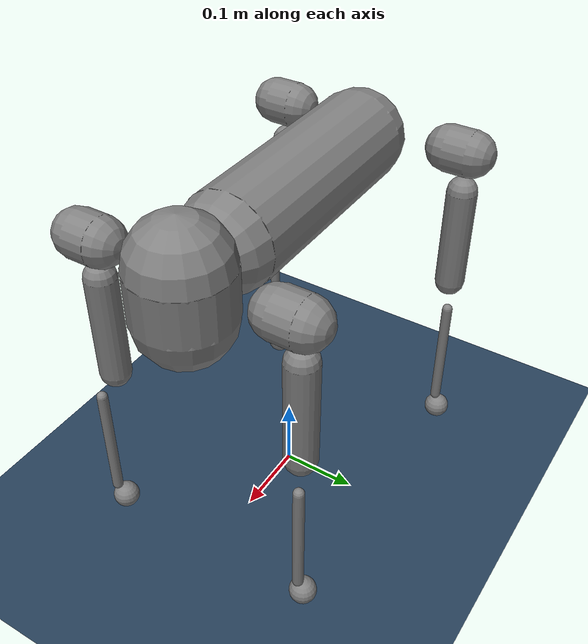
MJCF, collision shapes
<mujoco model="flat terrain">
  <include file="go2.xml"/>
  <statistic center="0 0 0.1" extent="0.8"/>

  <visual>
    <headlight diffuse="0.6 0.6 0.6" ambient="0.3 0.3 0.3" specular="0 0 0"/>
    <rgba haze="0.15 0.25 0.35 1"/>
    <global azimuth="-130" elevation="-20"/>
    <quality shadowsize="4096" offsamples="8"/>
    <map force="0.1" zfar="30"/>  <!-- Hide force vectors -->
  </visual>

  <asset>
    <texture type="2d" name="groundplane" builtin="checker" mark="edge" rgb1="0.2 0.3 0.4" rgb2="0.1 0.2 0.3"
      markrgb="0.8 0.8 0.8" width="300" height="300"/>
    <material name="groundplane" texture="groundplane" texuniform="true" texrepeat="5 5" reflectance="0.2"/>
  </asset>

  <worldbody>
    <light pos="0 0 1.5" dir="0 0 -1" directional="true"/>
    <geom name="floor" size="0 0 0.05" type="plane" material="groundplane" friction="0.8 0.02 0.01"/>
  </worldbody>
</mujoco>

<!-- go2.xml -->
<mujoco model="go2">
  <compiler angle="radian" meshdir="assets" autolimits="true" />

  <option timestep="0.02" iterations="1" ls_iterations="5">
    <flag eulerdamp="disable" />
  </option>
  <custom>
    <numeric data="15" name="max_contact_points" />
    <numeric data="15" name="max_geom_pairs" />
  </custom>

  <default>
    <geom condim="1" margin="0.001" friction="0.6"/> <!-- solimp="0.0 0.95 0.01" -->
    <default class="go2">
      <site rgba="1 0 0 1" size="0.01" group="5" />
      <!-- general control-->
      <!-- torque control-->
      <joint axis="0 1 0" damping="0.65" armature="0.01" />

      <!-- ideal -->
      <default class="abduction">
        <joint axis="1 0 0" range="-1.0472 1.0472"/>
      </default>
      <default class="hip">
        <joint axis="0 1 0"/>
        <default class="front_hip">
          <joint range="-1.5708 3.4907"/>
        </default>
        <default class="back_hip">
          <joint range="-0.5236 4.5379"/>
        </default>
      </default>
      <default class="knee">
        <joint axis="0 1 0" range="-2.7227 -0.83776"/>
      </default>
      <default class="visual">
        <geom type="mesh" contype="0" conaffinity="0" group="2" material="metal"/>
      </default>
      <default class="collision">
        <geom group="3" type="capsule" margin="0.001"/>
        <!--  friction="0.4" -->
        <default class="foot">
          <geom type="sphere" size="0.0175" priority="1" condim="6" friction="0.8 0.02 0.01"/> <!-- friction "0.6" solimp="0.015 1 0.031" -->
        </default>
      </default>
    </default>
  </default>

  <asset>
    <material name="black" rgba="0.2 0.2 0.2 1" />
    <material name="metal" rgba="0.7 0.7 0.7 1" />
    <material name="white" rgba="1 1 1 1" />
    <material name="gray" rgba="0.671705 0.692426 0.774270 1" />

    <mesh file="assets/base_0.obj" />
    <mesh file="assets/base_1.obj" />
    <mesh file="assets/base_2.obj" />
    <mesh file="assets/base_3.obj" />
    <mesh file="assets/base_4.obj" />
    <mesh file="assets/hip_0.obj" />
    <mesh file="assets/hip_1.obj" />
    <mesh file="assets/thigh_0.obj" />
    <mesh file="assets/thigh_1.obj" />
    <mesh file="assets/thigh_mirror_0.obj" />
    <mesh file="assets/thigh_mirror_1.obj" />
    <mesh file="assets/calf_0.obj" />
    <mesh file="assets/calf_1.obj" />
    <mesh file="assets/calf_mirror_0.obj" />
    <mesh file="assets/calf_mirror_1.obj" />
    <mesh file="assets/foot.obj" />
  </asset>

  <worldbody>
    <light pos="1 0 3.5" dir="0 0 -1" directional="true" />
    <body name="base" pos="0 0 0.445" childclass="go2">
      <inertial pos="0.021112 0 -0.005366" quat="-0.000543471 0.713435 -0.00173769 0.700719"
        mass="6.921"
        diaginertia="0.107027 0.0980771 0.0244531" />
      <freejoint name="floating_base_joint" />
      <geom mesh="base_0" material="black" class="visual" />
      <geom mesh="base_1" material="black" class="visual" />
      <geom mesh="base_2" material="black" class="visual" />
      <geom mesh="base_3" material="white" class="visual" />
      <geom mesh="base_4" material="gray" class="visual" />
      <geom size="0.06 0.14" pos="-0.02 0 0" class="collision" quat="0.707107 0 0.707107 0" />
      <geom size="0.06 0.03" pos="0.2 0 -0.015" class="collision" />
      <site name="imu" pos="-0.02557 0 0.04232" />
      <site name="base" pos="0 0 0" />
      <body name="FL_hip" pos="0.1934 0.0465 0">
        <inertial pos="-0.0054 0.00194 -0.000105" quat="0.497014 0.499245 0.505462 0.498237"
          mass="0.678"
          diaginertia="0.00088403 0.000596003 0.000479967" />
        <joint name="FL_hip_joint" class="abduction"/>
        <geom mesh="hip_0" material="metal" class="visual" />
        <geom mesh="hip_1" material="gray" class="visual" />
        <geom size="0.03 0.015" pos="0 0.08 0" quat="0.707107 0.707107 0 0" class="collision" />
        <site name="FL_hip_site" pos = "0 0 0" size="0.01" type="sphere" rgba="1 0 0 1"/>
        <body name="FL_thigh" pos="0 0.0955 0">
          <inertial pos="-0.00374 -0.0223 -0.0327" quat="0.829533 0.0847635 -0.0200632 0.551623"
            mass="1.152"
            diaginertia="0.00594973 0.00584149 0.000878787" />
          <joint name="FL_thigh_joint" class="front_hip" />
          <geom mesh="thigh_0" material="metal" class="visual" />
          <geom mesh="thigh_1" material="gray" class="visual" />
          <geom size="0.02 0.07" pos="-0.01 -0.01 -0.13" class="collision" />
          <body name="FL_calf" pos="0 0 -0.213">
            <inertial pos="0.00629595 -0.000622121 -0.141417"
              quat="0.710672 0.00154099 -0.00450087 0.703508"
              mass="0.241352" diaginertia="0.0014901 0.00146356 5.31397e-05" />
            <joint name="FL_calf_joint" class="knee" />
            <geom mesh="calf_0" material="gray" class="visual" />
            <geom mesh="calf_1" material="black" class="visual" />
            <geom size="0.007 0.08" pos="0.01 0 -0.1" quat="1 0 0 0"
              class="collision" />
            <geom pos="0 0 -0.213" mesh="foot" class="visual" material="black" />
            <body name="FL_foot" pos="0 0 -0.213">
              <inertial diaginertia="1e-14 1e-14 1e-14" mass="1e-6" pos="0 0 0"/>
              <body name="dummy_FL_foot_collision" pos="0 0 0">
                <geom class="foot" pos="-0.002 0 0" name="dummy_FL_foot_collision" />
                <inertial diaginertia="1e-14 1e-14 1e-14" mass="1e-6" pos="0 0 0"/>
                <site name="FL_grf_sensor" pos="0 0 0" size="0.025" type="sphere"/>
              </body>
            </body>
          </body>
        </body>
      </body>
      <body name="FR_hip" pos="0.1934 -0.0465 0">
        <inertial pos="-0.0054 -0.00194 -0.000105" quat="0.498237 0.505462 0.499245 0.497014"
          mass="0.678"
          diaginertia="0.00088403 0.000596003 0.000479967" />
        <joint name="FR_hip_joint" class="abduction"/>
        <geom mesh="hip_0" material="metal" class="visual" quat="4.63268e-05 1 0 0" />
        <geom mesh="hip_1" material="gray" class="visual" quat="4.63268e-05 1 0 0" />
        <geom size="0.03 0.015" pos="0 -0.08 0" quat="0.707107 0.707107 0 0" class="collision" />
        <site name="FR_hip_site" pos = "0 0 0" size="0.01" type="sphere" rgba="1 0 0 1"/>
        <body name="FR_thigh" pos="0 -0.0955 0">
          <inertial pos="-0.00374 0.0223 -0.0327" quat="0.551623 -0.0200632 0.0847635 0.829533"
            mass="1.152"
            diaginertia="0.00594973 0.00584149 0.000878787" />
          <joint name="FR_thigh_joint" class="front_hip"/>
          <geom mesh="thigh_mirror_0" material="metal" class="visual" />
          <geom mesh="thigh_mirror_1" material="gray" class="visual" />
          <geom size="0.02 0.07" pos="-0.01 0.01 -0.13" class="collision" />
          <body name="FR_calf" pos="0 0 -0.213">
            <inertial pos="0.00629595 0.000622121 -0.141417"
              quat="0.703508 -0.00450087 0.00154099 0.710672"
              mass="0.241352" diaginertia="0.0014901 0.00146356 5.31397e-05" />
            <joint name="FR_calf_joint" class="knee"/>
            <geom mesh="calf_mirror_0" material="gray" class="visual" />
            <geom mesh="calf_mirror_1" material="black" class="visual" />
            <geom size="0.007 0.08" pos="0.01 0 -0.1" quat="1 0 0 0"
              class="collision" />
            <geom pos="0 0 -0.213" mesh="foot" class="visual" material="black" />
            <body name="FR_foot" pos="0 0 -0.213">
              <body name="dummy_FR_foot_collision" pos="0 0 0">
                <geom class="foot" pos="-0.002 0 0" name="dummy_FR_foot_collision" />
                <inertial diaginertia="1e-14 1e-14 1e-14" mass="1e-6" pos="0 0 0"/>
                <site name="FR_grf_sensor" pos="0 0 0" size="0.025" type="sphere"/>
              </body>
            </body>
          </body>
        </body>
      </body>
      <body name="RL_hip" pos="-0.1934 0.0465 0">
        <inertial pos="0.0054 0.00194 -0.000105" quat="0.505462 0.498237 0.497014 0.499245"
          mass="0.678"
          diaginertia="0.00088403 0.000596003 0.000479967" />
        <joint name="RL_hip_joint" class="abduction"/>
        <geom mesh="hip_0" material="metal" class="visual" quat="4.63268e-05 0 1 0" />
        <geom mesh="hip_1" material="gray" class="visual" quat="4.63268e-05 0 1 0" />
        <geom size="0.03 0.015" pos="0 0.08 0" quat="0.707107 0.707107 0 0" class="collision" />
        <site name="RL_hip_site" pos = "0 0 0" size="0.01" type="sphere" rgba="1 0 0 1"/>
        <body name="RL_thigh" pos="0 0.0955 0">
          <inertial pos="-0.00374 -0.0223 -0.0327" quat="0.829533 0.0847635 -0.0200632 0.551623"
            mass="1.152"
            diaginertia="0.00594973 0.00584149 0.000878787" />
          <joint name="RL_thigh_joint" class="back_hip"/>
          <geom mesh="thigh_0" material="metal" class="visual" />
          <geom mesh="thigh_1" material="gray" class="visual" />
          <geom size="0.02 0.07" pos="-0.01 -0.01 -0.13"
            class="collision" />
          <body name="RL_calf" pos="0 0 -0.213">
            <inertial pos="0.00629595 -0.000622121 -0.141417"
              quat="0.710672 0.00154099 -0.00450087 0.703508"
              mass="0.241352" diaginertia="0.0014901 0.00146356 5.31397e-05" />
            <joint name="RL_calf_joint" class="knee" />
            <geom mesh="calf_0" material="gray" class="visual" />
            <geom mesh="calf_1" material="black" class="visual" />
            <geom size="0.007 0.08" pos="0.01 0 -0.1" quat="1 0 0 0"
              class="collision" />
            <geom pos="0 0 -0.213" mesh="foot" class="visual" material="black" />
            <body name="RL_foot" pos="0 0 -0.213">
              <inertial diaginertia="1e-14 1e-14 1e-14" mass="1e-6" pos="0 0 0"/>
              <body name="dummy_RL_foot_collision" pos="0 0 0">
                <geom class="foot" pos="-0.002 0 0" name="dummy_RL_foot_collision" />
                <inertial diaginertia="1e-14 1e-14 1e-14" mass="1e-6" pos="0 0 0"/>
                <site name="RL_grf_sensor" pos="0 0 0" size="0.025" type="sphere"/>
              </body>
            </body>
          </body>
        </body>
      </body>
      <body name="RR_hip" pos="-0.1934 -0.0465 0">
        <inertial pos="0.0054 -0.00194 -0.000105" quat="0.499245 0.497014 0.498237 0.505462"
          mass="0.678"
          diaginertia="0.00088403 0.000596003 0.000479967" />
        <joint name="RR_hip_joint" class="abduction"/>
        <geom mesh="hip_0" material="metal" class="visual"
          quat="2.14617e-09 4.63268e-05 4.63268e-05 -1" />
        <geom mesh="hip_1" material="gray" class="visual"
          quat="2.14617e-09 4.63268e-05 4.63268e-05 -1" />
        <geom size="0.03 0.015" pos="0 -0.08 0" quat="0.707107 0.707107 0 0" class="collision" />
        <site name="RR_hip_site" pos = "0 0 0" size="0.01" type="sphere" rgba="1 0 0 1"/>
        <body name="RR_thigh" pos="0 -0.0955 0">
          <inertial pos="-0.00374 0.0223 -0.0327" quat="0.551623 -0.0200632 0.0847635 0.829533"
            mass="1.152"
            diaginertia="0.00594973 0.00584149 0.000878787" />
          <joint name="RR_thigh_joint" class="back_hip"/>
          <geom mesh="thigh_mirror_0" material="metal" class="visual" />
          <geom mesh="thigh_mirror_1" material="gray" class="visual" />
          <geom size="0.02 0.07" pos="-0.01 0.01 -0.13"
            class="collision" />
          <body name="RR_calf" pos="0 0 -0.213">
            <inertial pos="0.00629595 0.000622121 -0.141417"
              quat="0.703508 -0.00450087 0.00154099 0.710672"
              mass="0.241352" diaginertia="0.0014901 0.00146356 5.31397e-05" />
            <joint name="RR_calf_joint" class="knee"/>
            <geom mesh="calf_mirror_0" material="gray" class="visual" />
            <geom mesh="calf_mirror_1" material="black" class="visual" />
            <geom size="0.007 0.08" pos="0.01 0 -0.1" quat="1 0 0 0"
              class="collision" />
            <geom pos="0 0 -0.213" mesh="foot" class="visual" material="black" />
            <body name="RR_foot" pos="0 0 -0.213">
              <inertial diaginertia="1e-14 1e-14 1e-14" mass="1e-6" pos="0 0 0"/>
              <body name="dummy_RR_foot_collision" pos="0 0 0">
                <geom class="foot" pos="-0.002 0 0" name="dummy_RR_foot_collision" />
                <inertial diaginertia="1e-14 1e-14 1e-14" mass="1e-6" pos="0 0 0"/>
                <site name="RR_grf_sensor" pos="0 0 0" size="0.025" type="sphere"/>
              </body>
            </body>
          </body>
        </body>
      </body>
    </body>

    <camera mode="trackcom" name="trackcom_RightHoriz" pos="0 -0.8 0.3" xyaxes="1 0 0 0 0 1"/>
    <camera mode="trackcom" name="tackcom_RightAbove10deg" pos="0 -0.9 0.5" xyaxes="1 0 0 0 0.174 0.985"/>
  </worldbody>

  <actuator>
    <motor class="abduction" name="FL_hip" joint="FL_hip_joint"/>
    <motor class="hip" name="FL_thigh" joint="FL_thigh_joint"/>
    <motor class="knee" name="FL_calf" joint="FL_calf_joint"/>
    <motor class="abduction" name="FR_hip" joint="FR_hip_joint"/>
    <motor class="hip" name="FR_thigh" joint="FR_thigh_joint"/>
    <motor class="knee" name="FR_calf" joint="FR_calf_joint"/>
    <motor class="abduction" name="RL_hip" joint="RL_hip_joint"/>
    <motor class="hip" name="RL_thigh" joint="RL_thigh_joint"/>
    <motor class="knee" name="RL_calf" joint="RL_calf_joint"/>
    <motor class="abduction" name="RR_hip" joint="RR_hip_joint"/>
    <motor class="hip" name="RR_thigh" joint="RR_thigh_joint"/>
    <motor class="knee" name="RR_calf" joint="RR_calf_joint"/>
  </actuator>

  <sensor>
    <!--keep the order of the sensors for reading
      FR -> FL -> RR -> RL-->
    <jointpos name="FR_hip_pos" joint="FR_hip_joint" />
    <jointpos name="FR_thigh_pos" joint="FR_thigh_joint" />
    <jointpos name="FR_calf_pos" joint="FR_calf_joint" />
    <jointpos name="FL_hip_pos" joint="FL_hip_joint" />
    <jointpos name="FL_thigh_pos" joint="FL_thigh_joint" />
    <jointpos name="FL_calf_pos" joint="FL_calf_joint" />
    <jointpos name="RR_hip_pos" joint="RR_hip_joint" />
    <jointpos name="RR_thigh_pos" joint="RR_thigh_joint" />
    <jointpos name="RR_calf_pos" joint="RR_calf_joint" />
    <jointpos name="RL_hip_pos" joint="RL_hip_joint" />
    <jointpos name="RL_thigh_pos" joint="RL_thigh_joint" />
    <jointpos name="RL_calf_pos" joint="RL_calf_joint" />

    <jointvel name="FR_hip_vel" joint="FR_hip_joint" />
    <jointvel name="FR_thigh_vel" joint="FR_thigh_joint" />
    <jointvel name="FR_calf_vel" joint="FR_calf_joint" />
    <jointvel name="FL_hip_vel" joint="FL_hip_joint" />
    <jointvel name="FL_thigh_vel" joint="FL_thigh_joint" />
    <jointvel name="FL_calf_vel" joint="FL_calf_joint" />
    <jointvel name="RR_hip_vel" joint="RR_hip_joint" />
    <jointvel name="RR_thigh_vel" joint="RR_thigh_joint" />
    <jointvel name="RR_calf_vel" joint="RR_calf_joint" />
    <jointvel name="RL_hip_vel" joint="RL_hip_joint" />
    <jointvel name="RL_thigh_vel" joint="RL_thigh_joint" />
    <jointvel name="RL_calf_vel" joint="RL_calf_joint" />

    <jointactuatorfrc name="FR_hip_torque" joint="FR_hip_joint" noise="0.01" />
    <jointactuatorfrc name="FR_thigh_torque" joint="FR_thigh_joint" noise="0.01" />
    <jointactuatorfrc name="FR_calf_torque" joint="FR_calf_joint" noise="0.01" />
    <jointactuatorfrc name="FL_hip_torque" joint="FL_hip_joint" noise="0.01" />
    <jointactuatorfrc name="FL_thigh_torque" joint="FL_thigh_joint" noise="0.01" />
    <jointactuatorfrc name="FL_calf_torque" joint="FL_calf_joint" noise="0.01" />
    <jointactuatorfrc name="RR_hip_torque" joint="RR_hip_joint" noise="0.01" />
    <jointactuatorfrc name="RR_thigh_torque" joint="RR_thigh_joint" noise="0.01" />
    <jointactuatorfrc name="RR_calf_torque" joint="RR_calf_joint" noise="0.01" />
    <jointactuatorfrc name="RL_hip_torque" joint="RL_hip_joint" noise="0.01" />
    <jointactuatorfrc name="RL_thigh_torque" joint="RL_thigh_joint" noise="0.01" />
    <jointactuatorfrc name="RL_calf_torque" joint="RL_calf_joint" noise="0.01" />

    <framequat name="imu_quat" objtype="site" objname="imu" />
    <gyro name="imu_gyro" site="imu" />
    <accelerometer name="imu_acc" site="imu" />
    <!--keep the relative order between these four sensors-->
    <touch name="FR_contact_sensor" site="FR_grf_sensor"/>
    <touch name="FL_contact_sensor" site="FL_grf_sensor"/>
    <touch name="RR_contact_sensor" site="RR_grf_sensor"/>
    <touch name="RL_contact_sensor" site="RL_grf_sensor"/>

    <!-- Ground Truth -->
    <framepos name="frame_pos" objtype="site" objname="imu" />
    <velocimeter name="frame_vel" site="imu"/>
    <framelinvel name="frame_vel_global" objtype="site" objname="imu"/>
    <frameangvel name="frame_angvel_global" objtype="site" objname="imu"/>
    <!--keep the relative order between these four sensors-->
    <force name="FR_grf" site="FR_grf_sensor"/>
    <force name="FL_grf" site="FL_grf_sensor"/>
    <force name="RR_grf" site="RR_grf_sensor"/>
    <force name="RL_grf" site="RL_grf_sensor"/>
    <framelinvel name="FR_foot_linvel" objname="FR_grf_sensor" objtype="site"/>
    <framelinvel name="FL_foot_linvel" objname="FL_grf_sensor" objtype="site"/>
    <framelinvel name="RR_foot_linvel" objname="RR_grf_sensor" objtype="site"/>
    <framelinvel name="RL_foot_linvel" objname="RL_grf_sensor" objtype="site"/>
    <framequat name="FR_foot_quat" objname="FR_grf_sensor" objtype="site"/>
    <framequat name="FL_foot_quat" objname="FL_grf_sensor" objtype="site"/>
    <framequat name="RR_foot_quat" objname="RR_grf_sensor" objtype="site"/>
    <framequat name="RL_foot_quat" objname="RL_grf_sensor" objtype="site"/>

  </sensor>

  <keyframe>
    <key name="stand" qpos="0 0 0.285 1 0 0 0 0 0.9 -1.8 0 0.9 -1.8 0 0.9 -1.8 0 0.9 -1.8"
            qvel="0 0 0 0 0 0 0 0 0 0 0 0 0 0 0 0 0 0"
            ctrl="0 0.9 -1.8 0 0.9 -1.8 0 0.9 -1.8 0 0.9 -1.8" />
  </keyframe>
</mujoco>
